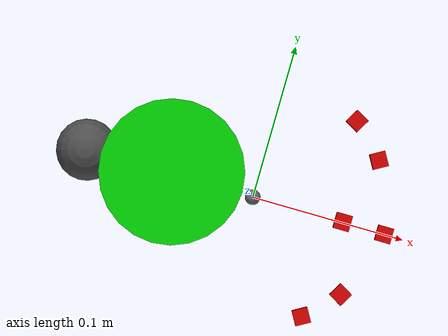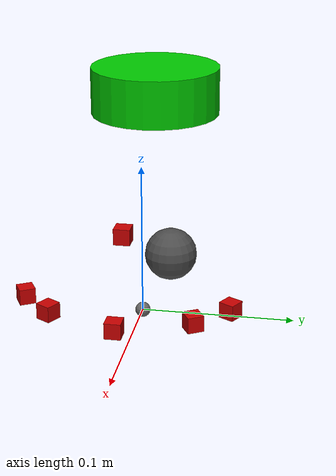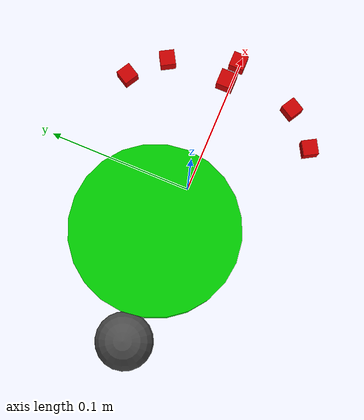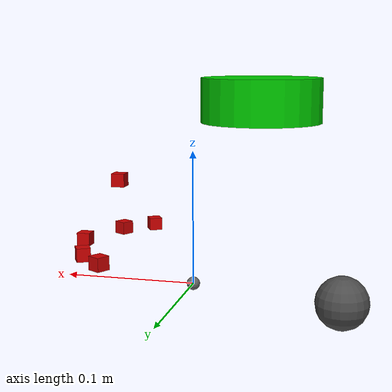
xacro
<?xml version="1.0" ?>
<robot name="niubot" xmlns:xacro="http://ros.org/wiki/xacro">
  <xacro:include filename="$(find niubot_description)/urdf/common_properties.xacro"/>
  <xacro:include filename="$(find niubot_description)/urdf/niubot.gazebo.xacro"/>

  <link name="base_footprint" >
    <visual>
      <origin rpy="0 0 0" xyz="0 0 0"/>
      <geometry>
        <sphere radius="0.005"/>
      </geometry>
      <material name="light_black"/>
    </visual>
  </link>

  <joint name="base_footprint_joint" type="fixed">
    <origin rpy="0 0 0" xyz="0 0 0"/>
    <parent link="base_footprint"/>
    <child link="base_link"/>
  </joint>
  <!-- BASE-LINK -->
  <!--Actual body/chassis of the robot-->
  <link name="base_link">
    <visual>
      <origin rpy="0 0 0" xyz="0 0 0"/>
      <geometry>
        <mesh filename="package://niubot_description/meshes/niubot_body.stl" scale="0.001 0.001 0.001"/>
      </geometry>
      <material name="white"/>
    </visual>
    <collision>
      <origin rpy="0 0 0 " xyz="0 0 0"/>
      <geometry>
        <box size="0.22 0.15 0.03"/>
      </geometry>
    </collision>
    <inertial>
      <mass value="4.4"/>
      <inertia ixx="0.001" ixy="0.0" ixz="0.0" iyy="0.01" iyz="0.0" izz="0.001"/>
    </inertial>
  </link>

  <joint name="wheel_right_joint" type="continuous">
    <parent link="base_link"/>
    <child link="wheel_right_link"/>
    <origin rpy="-1.5707 0 0" xyz="-0.002 -0.0817 0.0"/>
    <axis rpy="0 0 0" xyz="0 0 1"/>
    <limit effort="30" velocity="1.0" lower="-2.2" upper="0.7" />
    <safety_controller k_velocity="10" k_position="15" soft_lower_limit="-2.0" soft_upper_limit="0.5" />
  </joint>

  <!-- Transmission is important to link the joints and the controller -->
    <transmission name="right_wheel_joint_trans">
      <type>transmission_interface/SimpleTransmission</type>
      <joint name="right_wheel_joint" />
      <actuator name="right_wheel_joint_motor">
        <hardwareInterface>EffortJointInterface</hardwareInterface>
        <mechanicalReduction>1</mechanicalReduction>
      </actuator>
    </transmission>

  <link name="wheel_right_link">
    <visual>
      <origin rpy="0 0 0" xyz="0 0 0"/>
      <geometry>
        <mesh filename="package://niubot_description/meshes/niubot_wheel.stl" scale="0.001 0.001 0.001"/>
      </geometry>
      <material name="orange"/>
    </visual>
    <collision>
      <origin rpy="0 0 0 " xyz="0 0 0"/>
      <geometry>
        <cylinder length="0.02" radius="0.03"/>
      </geometry>
    </collision>
    <inertial>
      <mass value="0.2"/>
      <origin xyz="0 0 0"/>
      <!--The 3x3 rotational inertia matrix. -->
      <inertia ixx="0.0082916666667" ixy="0" ixz="0" iyy="0.00282916666667" iyz="0" izz="0.005625"/>
    </inertial>
  </link>

  <joint name="wheel_left_joint" type="continuous">
    <parent link="base_link"/>
    <child link="wheel_left_link"/>
    <origin rpy="-1.5707 0 0" xyz="-0.002 0.0817 0"/>
    <axis rpy="0 0 0" xyz="0 0 1"/>
    <limit effort="30" velocity="1.0" lower="-2.2" upper="0.7" />
    <safety_controller k_velocity="10" k_position="15" soft_lower_limit="-2.0" soft_upper_limit="0.5" />
  </joint>

  <!-- Transmission is important to link the joints and the controller -->
    <transmission name="left_wheel_joint_trans">
      <type>transmission_interface/SimpleTransmission</type>
      <joint name="left_wheel_joint" />
      <actuator name="left_wheel_joint_motor">
        <hardwareInterface>EffortJointInterface</hardwareInterface>
        <mechanicalReduction>1</mechanicalReduction>
      </actuator>
    </transmission>

  <link name="wheel_left_link">
    <visual>
      <origin rpy="0 0 0" xyz="0 0 0"/>
      <geometry>
        <mesh filename="package://niubot_description/meshes/niubot_wheel.stl" scale="0.001 0.001 0.001"/>
      </geometry>
      <material name="orange" />
    </visual>
    <collision>
      <origin rpy="0 0 0 " xyz="0 0 0"/>
      <geometry>
        <cylinder length="0.02" radius="0.03"/>
      </geometry>
    </collision>
    <inertial>
      <mass value="0.2"/>
      <origin xyz="0 0 0"/>
      <!--The 3x3 rotational inertia matrix. -->
      <inertia ixx="0.0082916666667" ixy="0" ixz="0" iyy="0.00282916666667" iyz="0" izz="0.005625"/>
    </inertial>
  </link>

  <joint name="caster_back_joint" type="fixed">
    <parent link="base_link"/>
    <child link="caster_back_link"/>
    <origin rpy="0 0 0" xyz="-0.111 0 -0.007"/>
  </joint>

  <link name="caster_back_link">
    <visual>
      <origin rpy="0 0 0" xyz="0 0 0"/>
      <geometry>
        <sphere radius="0.02"/>
      </geometry>
      <material name="dark"/>
    </visual>
    <collision>
      <geometry>
        <sphere radius="0.02"/>
      </geometry>
      <origin rpy="0 0 0" xyz="0 0 0"/>
    </collision>
    <inertial>
      <mass value="1.2"/>
      <origin xyz="0 0 0"/>
      <inertia ixx="0.001" ixy="0.0" ixz="0.0" iyy="0.001" iyz="0.0" izz="0.001"/>
    </inertial>
  </link>

  <!-- CAMERA -->
  <joint name="camera_joint" type="fixed">
    <origin rpy="0 0 0" xyz="0.057 0 0.077 "/>
    <parent link="base_link"/>
    <child link="camera_link"/>
  </joint>

  <link name="camera_link">
    <collision>
      <origin rpy="0 0 0" xyz="0 0 0"/>
      <geometry>
        <box size="0.01 0.01 0.01"/>
      </geometry>
    </collision>
    <visual>
      <origin rpy="0 0 0" xyz="0 0 0"/>
      <geometry>
        <box size="0.01 0.01 0.01"/>
      </geometry>
      <material name="red"/>
    </visual>
  </link>

  <!-- SONAR2 -->
  <joint name="sonar2_joint" type="fixed">
    <axis xyz="0 1 0"/>
    <origin rpy="0 0 0" xyz="0.086 0 0.03"/>
    <parent link="base_link"/>
    <child link="sonar2_link"/>
  </joint>

  <link name="sonar2_link">
    <collision>
      <origin rpy="0 0 0" xyz="0 0 0"/>
      <geometry>
        <box size="0.01 0.01 0.01"/>
      </geometry>
    </collision>
    <visual>
      <origin rpy="0 0 0" xyz="0 0 0"/>
      <geometry>
        <box size="0.01 0.01 0.01"/>
      </geometry>
      <material name="red"/>
    </visual>
    <inertial>
      <mass value="1e-5"/>
      <origin rpy="0 0 0" xyz="0 0 0"/>
      <inertia ixx="1e-6" ixy="0" ixz="0" iyy="1e-6" iyz="0" izz="1e-6"/>
    </inertial>
  </link>

  <!-- SONAR1 -->
  <joint name="sonar1_joint" type="fixed">
    <axis xyz="0 1 0"/>
    <origin rpy="0 0 0.52359879" xyz="0.07 0.044 0.03"/>
    <parent link="base_link"/>
    <child link="sonar1_link"/>
  </joint>

  <link name="sonar1_link">
    <collision>
      <origin rpy="0 0 0" xyz="0 0 0"/>
      <geometry>
        <box size="0.01 0.01 0.01"/>
      </geometry>
    </collision>
    <visual>
      <origin rpy="0 0 0" xyz="0 0 0"/>
      <geometry>
        <box size="0.01 0.01 0.01"/>
      </geometry>
      <material name="red"/>
    </visual>
    <inertial>
      <mass value="1e-5"/>
      <origin rpy="0 0 0" xyz="0 0 0"/>
      <inertia ixx="1e-6" ixy="0" ixz="0" iyy="1e-6" iyz="0" izz="1e-6"/>
    </inertial>
  </link>

  <!-- SONAR0 -->
  <joint name="sonar0_joint" type="fixed">
    <axis xyz="0 1 0"/>
    <origin rpy="0 0 1.04719758" xyz="0.05 0.064 0.03"/>
    <parent link="base_link"/>
    <child link="sonar0_link"/>
  </joint>

  <link name="sonar0_link">
    <collision>
      <origin rpy="0 0 0" xyz="0 0 0"/>
      <geometry>
        <box size="0.01 0.01 0.01"/>
      </geometry>
    </collision>
    <visual>
      <origin rpy="0 0 0" xyz="0 0 0"/>
      <geometry>
        <box size="0.01 0.01 0.01"/>
      </geometry>
      <material name="red"/>
    </visual>
    <inertial>
      <mass value="1e-5"/>
      <origin rpy="0 0 0" xyz="0 0 0"/>
      <inertia ixx="1e-6" ixy="0" ixz="0" iyy="1e-6" iyz="0" izz="1e-6"/>
    </inertial>
  </link>

  <!-- SONAR3 -->
  <joint name="sonar3_joint" type="fixed">
    <axis xyz="0 1 0"/>
    <origin rpy="0 0 -0.52359879" xyz="0.07 -0.044 0.03"/>
    <parent link="base_link"/>
    <child link="sonar3_link"/>
  </joint>

  <link name="sonar3_link">
    <collision>
      <origin rpy="0 0 0" xyz="0 0 0"/>
      <geometry>
        <box size="0.01 0.01 0.01"/>
      </geometry>
    </collision>
    <visual>
      <origin rpy="0 0 0" xyz="0 0 0"/>
      <geometry>
        <box size="0.01 0.01 0.01"/>
      </geometry>
      <material name="red"/>
    </visual>
    <inertial>
      <mass value="1e-5"/>
      <origin rpy="0 0 0" xyz="0 0 0"/>
      <inertia ixx="1e-6" ixy="0" ixz="0" iyy="1e-6" iyz="0" izz="1e-6"/>
    </inertial>
  </link>

  <!-- SONAR4 -->
  <joint name="sonar4_joint" type="fixed">
    <axis xyz="0 1 0"/>
    <origin rpy="0 0 -1.04719758" xyz="0.05 -0.064 0.03"/>
    <parent link="base_link"/>
    <child link="sonar4_link"/>
  </joint>

  <link name="sonar4_link">
    <collision>
      <origin rpy="0 0 0" xyz="0 0 0"/>
      <geometry>
        <box size="0.01 0.01 0.01"/>
      </geometry>
    </collision>
    <visual>
      <origin rpy="0 0 0" xyz="0 0 0"/>
      <geometry>
        <box size="0.01 0.01 0.01"/>
      </geometry>
      <material name="red"/>
    </visual>
    <inertial>
      <mass value="1e-5"/>
      <origin rpy="0 0 0" xyz="0 0 0"/>
      <inertia ixx="1e-6" ixy="0" ixz="0" iyy="1e-6" iyz="0" izz="1e-6"/>
    </inertial>
  </link>

  <!-- IMU -->
  <joint name="imu_joint" type="fixed">
    <origin rpy="0 0 0" xyz="0.04 0.0 0.09"/>
    <parent link="base_link"/>
    <child link="imu_link"/>
  </joint>

  <link name="imu_link"/>

  <joint name="scan_joint" type="fixed">
    <parent link="base_link"/>
    <child link="base_scan"/>
    <origin xyz="-0.05 0 0.138" rpy="0 0 0"/>
  </joint>

 <!-- LIDAR -->
  <link name="base_scan">
    <visual>
      <origin xyz="0 0 0" rpy="0 0 0"/>
      <geometry>
        <cylinder length="0.0315" radius="0.043"/>
      </geometry>
      <material name="green"/>
    </visual>
    <collision>
      <origin xyz="0 0 0" rpy="0 0 0"/>
      <geometry>
        <cylinder length="0.0315" radius="0.038"/>
      </geometry>
    </collision>
    <inertial>
      <mass value="0.114" />
      <origin xyz="0 0 0" />
      <inertia ixx="0.001" ixy="0.0" ixz="0.0"
               iyy="0.001" iyz="0.0"
               izz="0.001" />
    </inertial>
  </link>

</robot>

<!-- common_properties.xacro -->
<robot name="xacro_properties" xmlns:xacro="http://ros.org/wiki/xacro">

  <!-- Init colour -->
  <material name="black">
      <color rgba="0.0 0.0 0.0 1.0"/>
  </material>

  <material name="dark">
    <color rgba="0.3 0.3 0.3 1.0"/>
  </material>

  <material name="light_black">
    <color rgba="0.4 0.4 0.4 1.0"/>
  </material>

  <material name="blue">
    <color rgba="0.0 0.0 0.8 1.0"/>
  </material>

  <material name="green">
    <color rgba="0.0 0.8 0.0 1.0"/>
  </material>

  <material name="grey">
    <color rgba="0.5 0.5 0.5 1.0"/>
  </material>

  <material name="red">
    <color rgba="0.8 0.0 0.0 1.0"/>
  </material>

  <material name="white">
    <color rgba="1.0 1.0 1.0 1.0"/>
  </material>
</robot>
